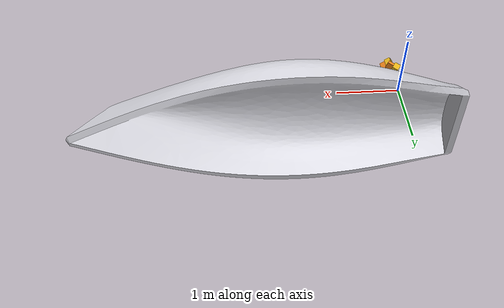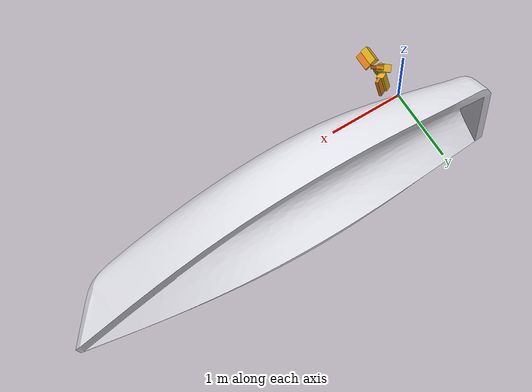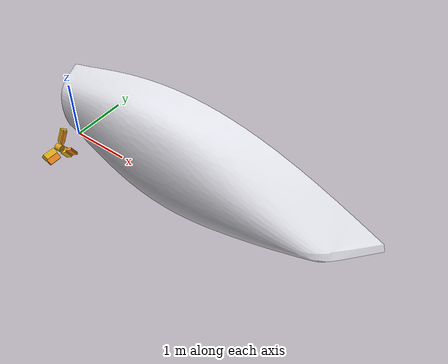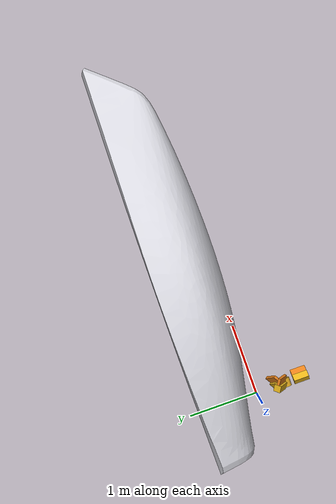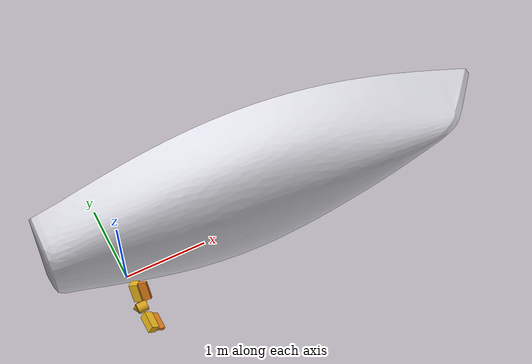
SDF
<?xml version="1.0" ?>
<sdf version="1.6">
  <world name="world">
    <model name="toy_boat">
      <pose>0 0 0 0 0 0</pose>

      <!-- ===================== HULL (base link) ====================== -->
      <link name="base_link">
        <pose>0 0 0 0 0 0</pose>
        <inertial>
          <pose>2.2206 0.3664 0 0 0 0</pose>
          <mass>1631.0</mass>
          <inertia>
            <ixx>789.0</ixx>  <ixy>0</ixy> <ixz>0</ixz>
            <iyy>5559.0</iyy> <iyz>0</iyz>
            <izz>5015.0</izz>
          </inertia>
        </inertial>
        <collision name="hull_collision">
          <pose>0 0 0 0 0 0</pose>
          <geometry><mesh><uri>../sdfs/DSYHS/OBJ/hull.obj</uri><scale>0.0026970 0.0026970 0.0026970</scale></mesh></geometry>
        </collision>
        <visual name="hull_visual">
          <pose>0 0 0 0 0 0</pose>
          <geometry><mesh><uri>../sdfs/DSYHS/OBJ/hull.obj</uri><scale>0.0026970 0.0026970 0.0026970</scale></mesh></geometry>
          <material><ambient>0.85 0.85 0.88 1</ambient><diffuse>0.85 0.85 0.88 1</diffuse></material>
        </visual>
      </link>

      <!-- ===================== KEEL (ballast) ======================== -->
      <link name="keel_link">
        <pose>0 0 0 0 0 0</pose>
        <inertial>
          <!-- 2000 kg at Y=-0.80: extreme keel for maximum righting moment.
               COM → Y≈-0.32, world Z≈-0.06 (0.46 m below waterline). -->
          <pose>1.5 -0.80 0 0 0 0</pose>
          <mass>315.0</mass>
          <inertia>
            <ixx>9.9</ixx>  <ixy>0</ixy> <ixz>0</ixz>
            <iyy>52.2</iyy>  <iyz>0</iyz>
            <izz>60.6</izz>
          </inertia>
        </inertial>
        <collision name="keel_collision">
          <pose>0 0 0 0 0 0</pose>
          <geometry><mesh><uri>../sdfs/DSYHS/OBJ/keel.obj</uri><scale>0.0026970 0.0026970 0.0026970</scale></mesh></geometry>
        </collision>
        <visual name="keel_visual">
          <pose>0 0 0 0 0 0</pose>
          <geometry><mesh><uri>../sdfs/DSYHS/OBJ/keel.obj</uri><scale>0.0026970 0.0026970 0.0026970</scale></mesh></geometry>
          <material><ambient>0.6 0.6 0.62 1</ambient><diffuse>0.6 0.6 0.62 1</diffuse></material>
        </visual>
      </link>

      <!-- ===================== RUDDER ================================ -->
      <link name="rudder_link">
        <pose>0 0 0 0 0 0</pose>
        <inertial>
          <pose>-0.2113 0.0233 0 0 0 0</pose>
          <mass>20.0</mass>
          <inertia>
            <ixx>0.86</ixx>  <ixy>0</ixy> <ixz>0</ixz>
            <iyy>0.20</iyy>  <iyz>0</iyz>
            <izz>1.06</izz>
          </inertia>
        </inertial>
        <collision name="rudder_collision">
          <pose>0 0 0 0 0 0</pose>
          <geometry><mesh><uri>../sdfs/DSYHS/OBJ/rudder.obj</uri><scale>0.0026970 0.0026970 0.0026970</scale></mesh></geometry>
        </collision>
        <visual name="rudder_visual">
          <pose>0 0 0 0 0 0</pose>
          <geometry><mesh><uri>../sdfs/DSYHS/OBJ/rudder.obj</uri><scale>0.0026970 0.0026970 0.0026970</scale></mesh></geometry>
          <material><ambient>0.7 0.2 0.15 1</ambient><diffuse>0.7 0.2 0.15 1</diffuse></material>
        </visual>
      </link>

      <!-- Rigid welds attaching keel + rudder to the hull -->
      <joint name="joint_keel" type="fixed">
        <parent>base_link</parent><child>keel_link</child><pose>0 0 0 0 0 0</pose>
      </joint>
      <joint name="joint_rudder" type="fixed">
        <parent>base_link</parent><child>rudder_link</child><pose>0 0 0 0 0 0</pose>
      </joint>

      <link name="propeller_hub">
        <pose>0.0 -0.45 0.0 0 0 0</pose>
        <inertial><pose>0 0 0 0 0 0</pose><mass>13.572</mass>
          <inertia><ixx>0.02443</ixx><ixy>0</ixy><ixz>0</ixz><iyy>0.02851</iyy><iyz>0</iyz><izz>0.02851</izz></inertia></inertial>
        <collision name="propeller_hub_collision"><pose>0 0 0 0 1.5707963267948966 0</pose>
          <geometry><cylinder><radius>0.06</radius><length>0.12</length></cylinder></geometry></collision>
        <visual name="propeller_hub_visual"><pose>0 0 0 0 1.5707963267948966 0</pose>
          <geometry><cylinder><radius>0.06</radius><length>0.12</length></cylinder></geometry>
          <material><ambient>0.8 0.6 0.1 1</ambient><diffuse>0.8 0.6 0.1 1</diffuse><specular>0.4 0.4 0.4 1</specular></material></visual>
      </link>

      <!-- Blade 0: 0 deg about X, pitched 0.6 about its radial axis;
           rib on the pressure (+x local) face for asymmetric cup drag. -->
      <link name="blade_0">
        <pose>0.00000 -0.67000 0.00000 0.000000 0.600000 0.000000</pose>
        <inertial><pose>0 0 0 0 0 0</pose><mass>10.0</mass>
          <inertia><ixx>0.04865</ixx><ixy>0</ixy><ixz>0</ixz><iyy>0.01665</iyy><iyz>0</iyz><izz>0.04865</izz></inertia></inertial>
        <collision name="blade_0_collision"><pose>0 0 0 0 0 0</pose>
          <geometry><box><size>0.10 0.22 0.10</size></box></geometry></collision>
        <visual name="blade_0_visual"><pose>0 0 0 0 0 0</pose>
          <geometry><box><size>0.10 0.22 0.10</size></box></geometry>
          <material><ambient>0.9 0.7 0.1 1</ambient><diffuse>0.9 0.7 0.1 1</diffuse></material></visual>
      </link>
      <link name="blade_0_rib">
        <pose>0.08253 -0.67000 -0.05646 0.000000 0.600000 0.000000</pose>
        <inertial><pose>0 0 0 0 0 0</pose><mass>2.0</mass>
          <inertia><ixx>0.00833</ixx><ixy>0</ixy><ixz>0</ixz><iyy>0.00193</iyy><iyz>0</iyz><izz>0.00973</izz></inertia></inertial>
        <collision name="blade_0_rib_collision"><pose>0 0 0 0 0 0</pose>
          <geometry><box><size>0.10 0.22 0.04</size></box></geometry></collision>
        <visual name="blade_0_rib_visual"><pose>0 0 0 0 0 0</pose>
          <geometry><box><size>0.10 0.22 0.04</size></box></geometry>
          <material><ambient>0.9 0.5 0.1 1</ambient><diffuse>0.9 0.5 0.1 1</diffuse></material></visual>
      </link>
      <!-- Blade 1: 120 deg about X, pitched 0.6 about its radial axis;
           rib on the pressure (+x local) face for asymmetric cup drag. -->
      <link name="blade_1">
        <pose>0.00000 -0.34000 -0.19053 2.015474 -0.286213 0.534872</pose>
        <inertial><pose>0 0 0 0 0 0</pose><mass>10.0</mass>
          <inertia><ixx>0.04865</ixx><ixy>0</ixy><ixz>0</ixz><iyy>0.01665</iyy><iyz>0</iyz><izz>0.04865</izz></inertia></inertial>
        <collision name="blade_1_collision"><pose>0 0 0 0 0 0</pose>
          <geometry><box><size>0.10 0.22 0.10</size></box></geometry></collision>
        <visual name="blade_1_visual"><pose>0 0 0 0 0 0</pose>
          <geometry><box><size>0.10 0.22 0.10</size></box></geometry>
          <material><ambient>0.9 0.7 0.1 1</ambient><diffuse>0.9 0.7 0.1 1</diffuse></material></visual>
      </link>
      <link name="blade_1_rib">
        <pose>0.08253 -0.29110 -0.16229 2.015474 -0.286213 0.534872</pose>
        <inertial><pose>0 0 0 0 0 0</pose><mass>2.0</mass>
          <inertia><ixx>0.00833</ixx><ixy>0</ixy><ixz>0</ixz><iyy>0.00193</iyy><iyz>0</iyz><izz>0.00973</izz></inertia></inertial>
        <collision name="blade_1_rib_collision"><pose>0 0 0 0 0 0</pose>
          <geometry><box><size>0.10 0.22 0.04</size></box></geometry></collision>
        <visual name="blade_1_rib_visual"><pose>0 0 0 0 0 0</pose>
          <geometry><box><size>0.10 0.22 0.04</size></box></geometry>
          <material><ambient>0.9 0.5 0.1 1</ambient><diffuse>0.9 0.5 0.1 1</diffuse></material></visual>
      </link>
      <!-- Blade 2: 240 deg about X, pitched 0.6 about its radial axis;
           rib on the pressure (+x local) face for asymmetric cup drag. -->
      <link name="blade_2">
        <pose>0.00000 -0.34000 0.19053 -2.015474 -0.286213 -0.534872</pose>
        <inertial><pose>0 0 0 0 0 0</pose><mass>10.0</mass>
          <inertia><ixx>0.04865</ixx><ixy>0</ixy><ixz>0</ixz><iyy>0.01665</iyy><iyz>0</iyz><izz>0.04865</izz></inertia></inertial>
        <collision name="blade_2_collision"><pose>0 0 0 0 0 0</pose>
          <geometry><box><size>0.10 0.22 0.10</size></box></geometry></collision>
        <visual name="blade_2_visual"><pose>0 0 0 0 0 0</pose>
          <geometry><box><size>0.10 0.22 0.10</size></box></geometry>
          <material><ambient>0.9 0.7 0.1 1</ambient><diffuse>0.9 0.7 0.1 1</diffuse></material></visual>
      </link>
      <link name="blade_2_rib">
        <pose>0.08253 -0.38890 0.21876 -2.015474 -0.286213 -0.534872</pose>
        <inertial><pose>0 0 0 0 0 0</pose><mass>2.0</mass>
          <inertia><ixx>0.00833</ixx><ixy>0</ixy><ixz>0</ixz><iyy>0.00193</iyy><iyz>0</iyz><izz>0.00973</izz></inertia></inertial>
        <collision name="blade_2_rib_collision"><pose>0 0 0 0 0 0</pose>
          <geometry><box><size>0.10 0.22 0.04</size></box></geometry></collision>
        <visual name="blade_2_rib_visual"><pose>0 0 0 0 0 0</pose>
          <geometry><box><size>0.10 0.22 0.04</size></box></geometry>
          <material><ambient>0.9 0.5 0.1 1</ambient><diffuse>0.9 0.5 0.1 1</diffuse></material></visual>
      </link>

      <joint name="joint_propeller" type="revolute">
        <parent>base_link</parent><child>propeller_hub</child><pose>0 0 0 0 0 0</pose>
        <axis><xyz>1 0 0</xyz><limit><lower>-1e16</lower><upper>1e16</upper></limit></axis>
      </joint>
      <joint name="joint_blade_0" type="fixed"><parent>propeller_hub</parent><child>blade_0</child><pose>0 0 0 0 0 0</pose></joint>
      <joint name="joint_blade_0_rib" type="fixed"><parent>blade_0</parent><child>blade_0_rib</child><pose>0 0 0 0 0 0</pose></joint>
      <joint name="joint_blade_1" type="fixed"><parent>propeller_hub</parent><child>blade_1</child><pose>0 0 0 0 0 0</pose></joint>
      <joint name="joint_blade_1_rib" type="fixed"><parent>blade_1</parent><child>blade_1_rib</child><pose>0 0 0 0 0 0</pose></joint>
      <joint name="joint_blade_2" type="fixed"><parent>propeller_hub</parent><child>blade_2</child><pose>0 0 0 0 0 0</pose></joint>
      <joint name="joint_blade_2_rib" type="fixed"><parent>blade_2</parent><child>blade_2_rib</child><pose>0 0 0 0 0 0</pose></joint>

    </model>
  </world>
</sdf>
